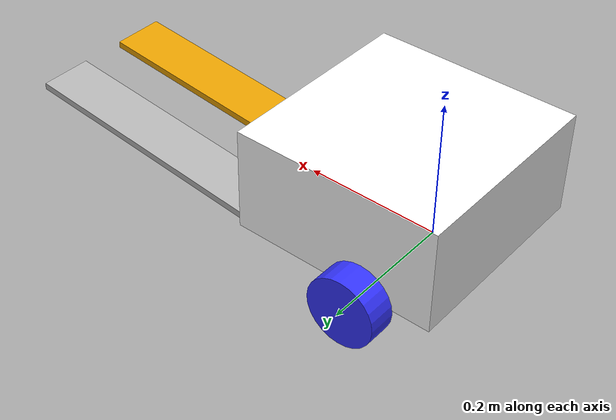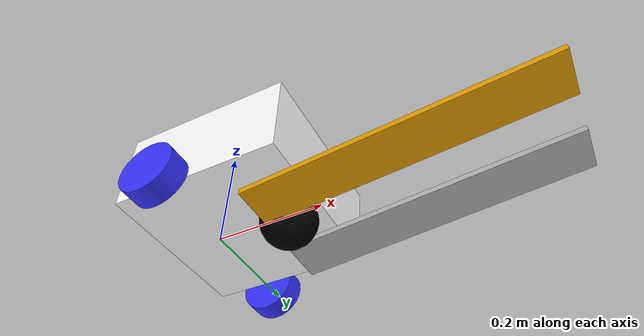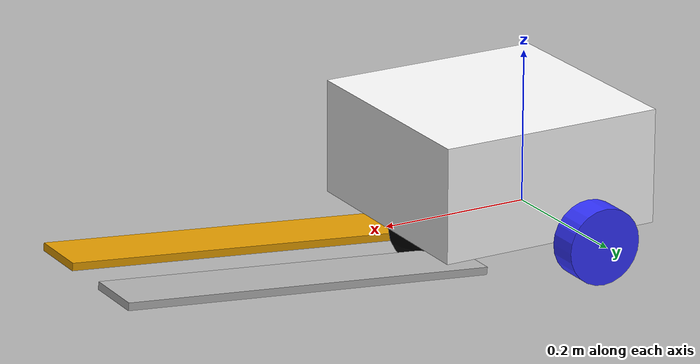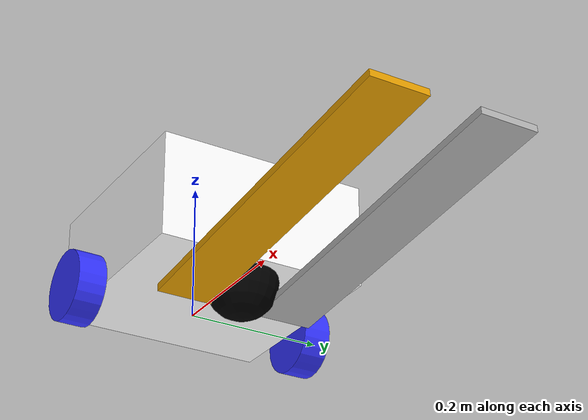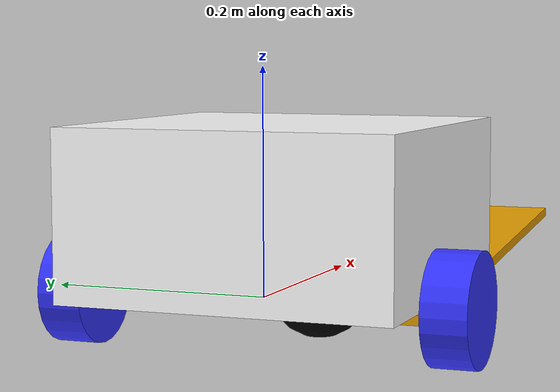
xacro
<?xml version="1.0"?>
<robot xmlns:xacro="http://www.ros.org/wiki/xacro" >

    <xacro:include filename="inertial_macros.xacro"/>

    <material name="white">
        <color rgba="1 1 1 1" />
    </material>

    <material name="orange">
        <color rgba="1 0.3 0.1 1"/>
    </material>

    <material name="blue">
        <color rgba="0.2 0.2 1 1"/>
    </material>

    <material name="black">
        <color rgba="0 0 0 1"/>
    </material>

    <material name="red">
        <color rgba="1 0 0 1"/>
    </material>

    <!-- BASE LINK -->

    <link name="base_link">

    </link>

     <!-- BASE_FOOTPRINT LINK -->

    <joint name="base_footprint_joint" type="fixed">
        <parent link="base_link"/>
        <child link="base_footprint"/>
        <origin xyz="0 0 0" rpy="0 0 0"/>
    </joint>

    <link name="base_footprint">
    </link>

    <!-- CHASSIS LINK -->

    <joint name="chassis_joint" type="fixed">
        <parent link="base_link"/>
        <child link="chassis"/>
        <origin xyz="-0.1 0 0"/>
    </joint>

    <link name="chassis">
        <visual>
            <origin xyz="0.15 0 0.075"/>
            <geometry>
                <box size="0.3 0.3 0.15"/>
            </geometry>
            <material name="white"/>
        </visual>
        <collision>
            <origin xyz="0.15 0 0.075"/>
            <geometry>
                <box size="0.3 0.3 0.15"/>
            </geometry>
        </collision>
        <xacro:inertial_box mass="10" x="0.3" y="0.3" z="0.15">
            <origin xyz="0.15 0 0.075" rpy="0 0 0"/>
        </xacro:inertial_box>
    </link>

    <gazebo reference="chassis">
        <material>Gazebo/White</material>
    </gazebo>

    <!-- LEFT WHEEL LINK -->

    <joint name="left_wheel_joint" type="continuous">
        <parent link="base_link"/>
        <child link="left_wheel"/>
        <origin xyz="0 0.175 0" rpy="-${pi/2} 0 0" />
        <axis xyz="0 0 1"/>
    </joint>

    <link name="left_wheel">
        <visual>
            <geometry>
                <cylinder radius="0.05" length="0.04"/>
            </geometry>
            <material name="blue"/>
        </visual>
        <collision>
            <geometry>
                <cylinder radius="0.05" length="0.04"/>
            </geometry>
        </collision>
        <xacro:inertial_cylinder mass="0.1" length="0.04" radius="0.05">
            <origin xyz="0 0 0" rpy="0 0 0"/>
        </xacro:inertial_cylinder>
    </link>

    <gazebo reference="left_wheel">
        <material>Gazebo/Blue</material>
    </gazebo>

    <!-- RIGHT WHEEL LINK -->

    <joint name="right_wheel_joint" type="continuous">
        <parent link="base_link"/>
        <child link="right_wheel"/>
        <origin xyz="0 -0.175 0" rpy="${pi/2} 0 0" />
        <axis xyz="0 0 -1"/>
    </joint>

    <link name="right_wheel">
        <visual>
            <geometry>
                <cylinder radius="0.05" length="0.04"/>
            </geometry>
            <material name="blue"/>
        </visual>
        <collision>
            <geometry>
                <cylinder radius="0.05" length="0.04"/>
            </geometry>
        </collision>
        <xacro:inertial_cylinder mass="0.1" length="0.04" radius="0.05">
            <origin xyz="0 0 0" rpy="0 0 0"/>
        </xacro:inertial_cylinder>
    </link>

    <gazebo reference="right_wheel">
        <material>Gazebo/Blue</material>
    </gazebo>

    <!-- CASTER WHEEL LINK -->

    <joint name="caster_wheel_joint" type="fixed">
        <parent link="chassis"/>
        <child link="caster_wheel"/>
        <origin xyz="0.24 0 -0.01"/>
    </joint>

    <link name="caster_wheel">
        <visual>
            <geometry>
                <sphere radius="0.05"/>
            </geometry>
            <material name="black"/>
        </visual>
        <collision>
            <geometry>
                <sphere radius="0.05"/>
            </geometry>
        </collision>
        <xacro:inertial_sphere mass="5" radius="0.05">
            <origin xyz="0 0 0" rpy="0 0 0"/>
        </xacro:inertial_sphere>
    </link>

    <gazebo reference="caster_wheel">
        <material>Gazebo/Black</material>
        <mu1 value="0.001"/>
        <mu2 value="0.001"/>
    </gazebo>

    <link name="actuator_main_link">
        <inertial>
            <mass value="0.4"/>
            <origin xyz="0 0 0"/>
            <inertia ixx="0.2" iyy="0.2" izz="0.2" ixy="0" ixz="0" iyz="0"/>
        </inertial>
    </link>

    <!-- Prismatic Joint (Moves the Actuator as One Unit) -->
    <joint name="linear_actuator" type="prismatic">
        <parent link="base_link"/>
        <child link="actuator_main_link"/>
        <origin xyz="0.37 0 -0.01" rpy="0 ${-0.1} 0"/>
        <axis xyz="0 0 1"/>  <!-- Moves in X-direction -->
        <limit lower="0" upper="0.2" effort="10.0" velocity="0.5"/>
    </joint>

    <!-- Actuator Link 1 (Fixed to Main Actuator) -->
    <link name="actuator_link">
        <inertial>
            <mass value="0.2"/>
            <origin xyz="0 0 0"/>
            <inertia ixx="0.1" iyy="0.1" izz="0.1" ixy="0" ixz="0" iyz="0"/>
        </inertial>
        <visual>
            <geometry>
                <box size="0.5 0.08 0.01"/>
            </geometry>
        </visual>
        <collision>
            <geometry>
                <box size="0.5 0.08 0.01"/>
            </geometry>
        </collision>
        <xacro:inertial_box mass="0.2" x="0.5" y="0.08" z="0.01">
            <origin xyz="0 0 0" rpy="0 0 0"/>
        </xacro:inertial_box>
    </link>

    <joint name="fixed_actuator1" type="fixed">
        <parent link="actuator_main_link"/>
        <child link="actuator_link"/>
        <origin xyz="0 0.075 0"/>
    </joint>
    <gazebo reference="fixed_actuator1">
        <material>Gazebo/Blue</material>
    </gazebo>

    <!-- Actuator Link 2 (Fixed to Main Actuator) -->
    <link name="actuator_link2">
        <inertial>
            <mass value="0.2"/>
            <origin xyz="0 0 0"/>
            <inertia ixx="0.1" iyy="0.1" izz="0.1" ixy="0" ixz="0" iyz="0"/>
        </inertial>
        <visual>
            <geometry>
                <box size="0.5 0.08 0.01"/>
            </geometry>
        </visual>
        <collision>
            <geometry>
                <box size="0.5 0.08 0.01"/>
            </geometry>
        </collision>
        <xacro:inertial_box mass="0.2" x="0.5" y="0.08" z="0.01">
            <origin xyz="0 0 0" rpy="0 0 0"/>
        </xacro:inertial_box>
    </link>

    <joint name="fixed_actuator2" type="fixed">
        <parent link="actuator_main_link"/>
        <child link="actuator_link2"/>
        <origin xyz="0 -0.075 0"/>
    </joint>
    <gazebo reference="fixed_actuator2">
        <material>Gazebo/Blue</material>
    </gazebo>

    <ros2_control name="GazeboSystem" type="system">
    <hardware>
        <plugin>gazebo_ros2_control/GazeboSystem</plugin>
    </hardware>
    <joint name="linear_actuator">
        <command_interface name="position">
            <param name='min'>0</param>
            <param name='max'>0.5</param>
        </command_interface>
        <state_interface name="position">
            <param name="initial_value">0</param>
        </state_interface>
        <state_interface name="velocity"/>
        <state_interface name="effort"/>
    </joint>
    </ros2_control>
    <gazebo>
        <plugin filename="libgazebo_ros2_control.so" name="gazebo_ros2_control">
            <parameters>$(find articubot_one)/config/control_arm.yaml</parameters>
        </plugin>
    </gazebo>
</robot>
